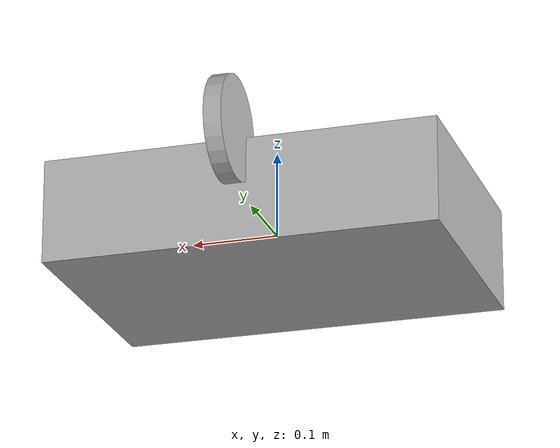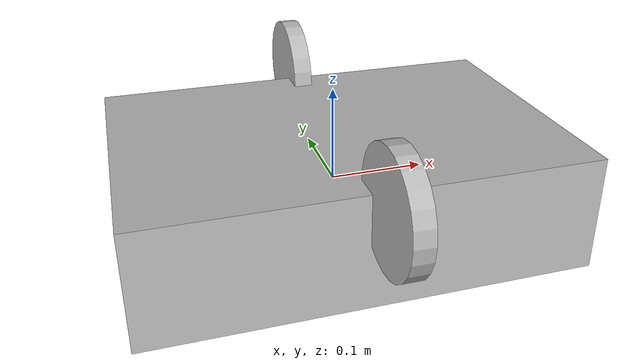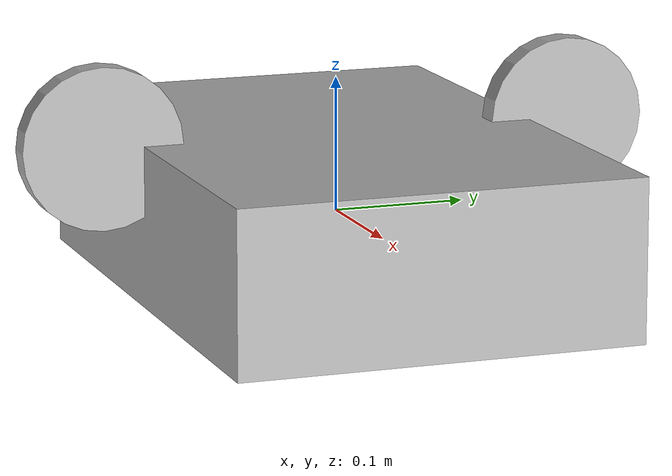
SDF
<?xml version="1.0" ?>
<sdf version="1.6">
  <model name="warehouse_bot">
    <pose>0 0 0 0 0 0</pose>
    <static>false</static>

    <!-- Base -->
    <link name="base_link">
      <inertial>
        <mass>8.0</mass>
        <inertia>
          <ixx>0.20</ixx><iyy>0.20</iyy><izz>0.30</izz>
          <ixy>0</ixy><ixz>0</ixz><iyz>0</iyz>
        </inertia>
      </inertial>

      <collision name="base_col">
        <geometry><box><size>0.45 0.30 0.12</size></box></geometry>
      </collision>
      <visual name="base_vis">
        <geometry><box><size>0.45 0.30 0.12</size></box></geometry>
      </visual>

      <!-- Simple 2D lidar -->
      <sensor name="lidar" type="ray">
        <pose>0.18 0 0.10 0 0 0</pose>
        <update_rate>10</update_rate>
        <ray>
          <scan>
            <horizontal>
              <samples>360</samples>
              <min_angle>-3.14159</min_angle>
              <max_angle>3.14159</max_angle>
            </horizontal>
          </scan>
          <range>
            <min>0.12</min>
            <max>10.0</max>
          </range>
        </ray>
        <visualize>false</visualize>
        <plugin name="gazebo_ros_ray_sensor" filename="libgazebo_ros_ray_sensor.so">
          <ros>
            <namespace>/</namespace>
            <remapping>~/out:=scan</remapping>
          </ros>
          <frame_name>base_link</frame_name>
        </plugin>
      </sensor>
    </link>

    <!-- Left wheel -->
    <link name="wheel_left">
      <pose>0 0.18 0.06 0 1.5708 0</pose>
      <inertial>
        <mass>0.6</mass>
        <inertia>
          <ixx>0.001</ixx><iyy>0.001</iyy><izz>0.001</izz>
          <ixy>0</ixy><ixz>0</ixz><iyz>0</iyz>
        </inertia>
      </inertial>
      <collision name="col">
        <geometry><cylinder><radius>0.06</radius><length>0.02</length></cylinder></geometry>
      </collision>
      <visual name="vis">
        <geometry><cylinder><radius>0.06</radius><length>0.02</length></cylinder></geometry>
      </visual>
    </link>

    <!-- Right wheel -->
    <link name="wheel_right">
      <pose>0 -0.18 0.06 0 1.5708 0</pose>
      <inertial>
        <mass>0.6</mass>
        <inertia>
          <ixx>0.001</ixx><iyy>0.001</iyy><izz>0.001</izz>
          <ixy>0</ixy><ixz>0</ixz><iyz>0</iyz>
        </inertia>
      </inertial>
      <collision name="col">
        <geometry><cylinder><radius>0.06</radius><length>0.02</length></cylinder></geometry>
      </collision>
      <visual name="vis">
        <geometry><cylinder><radius>0.06</radius><length>0.02</length></cylinder></geometry>
      </visual>
    </link>

    <!-- Wheel joints -->
    <joint name="joint_left" type="revolute">
      <parent>base_link</parent>
      <child>wheel_left</child>
      <axis>
        <xyz>0 0 1</xyz>
        <limit><lower>-1e16</lower><upper>1e16</upper></limit>
      </axis>
    </joint>

    <joint name="joint_right" type="revolute">
      <parent>base_link</parent>
      <child>wheel_right</child>
      <axis>
        <xyz>0 0 1</xyz>
        <limit><lower>-1e16</lower><upper>1e16</upper></limit>
      </axis>
    </joint>

    <!-- Differential drive plugin (ROS2) -->
    <plugin name="gazebo_ros_diff_drive" filename="libgazebo_ros_diff_drive.so">
      <ros>
        <namespace>/</namespace>
      </ros>

      <left_joint>joint_left</left_joint>
      <right_joint>joint_right</right_joint>

      <wheel_separation>0.36</wheel_separation>
      <wheel_diameter>0.12</wheel_diameter>

      <cmd_vel_topic>cmd_vel</cmd_vel_topic>
      <odom_topic>odom</odom_topic>
      <publish_odom>true</publish_odom>
      <publish_tf>true</publish_tf>

      <odometry_frame>odom</odometry_frame>
      <robot_base_frame>base_link</robot_base_frame>

      <max_wheel_torque>5</max_wheel_torque>
      <update_rate>30</update_rate>
    </plugin>
  </model>
</sdf>
